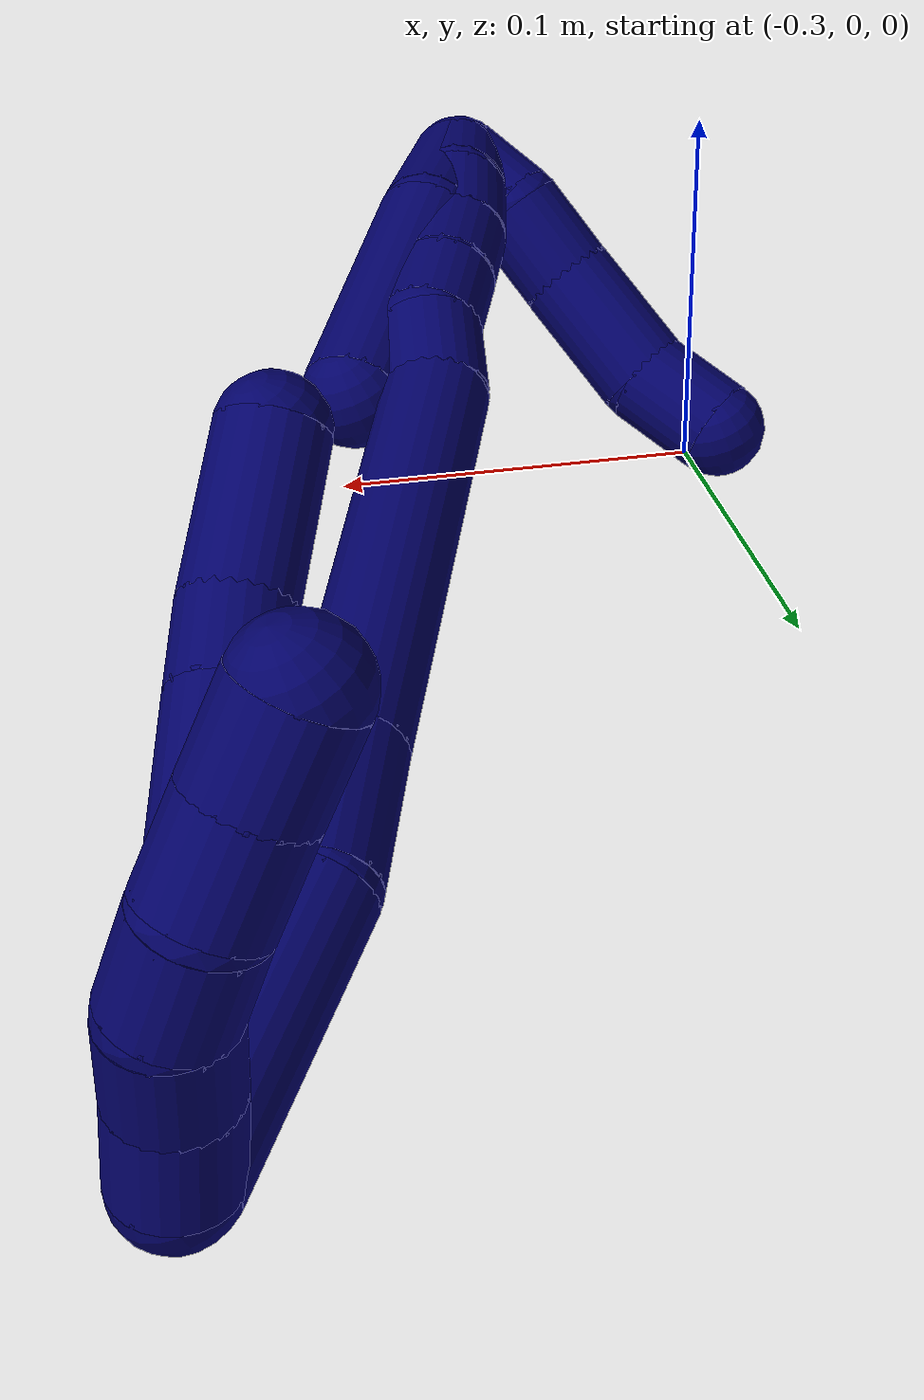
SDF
<sdf version="1.7">
 <world name="default">
  <model name="photoneo_s_sensor">
   <static>1</static>
   <pose>0 0 2 1.57079 1.57079 3.14159</pose>
   <link name="link">
    <inertial><mass>0.1</mass></inertial>
    <sensor name="sensor" type="depth">
     <update_rate>30</update_rate>
     <camera>
      <horizontal_fov>1.22</horizontal_fov>
      <image><width>1920</width><height>1200</height><format>B8G8R8</format></image>
      <clip><near>0.1</near><far>4</far></clip>
      <depth_camera><output>points</output></depth_camera>
     </camera>
     <plugin name="camera_plugin" filename="libgazebo_ros_depth_camera.so">
      <baseline>0.2</baseline>
      <alwaysOn>1</alwaysOn>
      <updateRate>0.0</updateRate>
      <cameraName>camera_ir</cameraName>
      <imageTopicName>/camera/color/image_raw</imageTopicName>
      <cameraInfoTopicName>/camera/color/camera_info</cameraInfoTopicName>
      <depthImageTopicName>/camera/depth/image_raw</depthImageTopicName>
      <depthImageCameraInfoTopicName>/camera/depth/camera_info</depthImageCameraInfoTopicName>
      <pointCloudTopicName>/camera/depth/points</pointCloudTopicName>
      <frameName>fr_optical</frameName>
      <pointCloudCutoff>0.1</pointCloudCutoff>
      <pointCloudCutoffMax>2.0</pointCloudCutoffMax>
      <distortionK1>0</distortionK1>
      <distortionK2>0</distortionK2>
      <distortionK3>0</distortionK3>
      <distortionT1>0</distortionT1>
      <distortionT2>0</distortionT2>
      <CxPrime>0</CxPrime>
      <Cx>0</Cx>
      <Cy>0</Cy>
      <focalLength>0</focalLength>
      <hackBaseline>0</hackBaseline>
     </plugin>
    </sensor>
   </link>
  </model>
  <model name="bin">
   <static>1</static>
   <link name="bottom">
    <collision name="collision-bottom">
     <pose>0 0 -0.01 0 -0 0</pose>
     <geometry><box><size>0.8 0.6 0.02</size></box></geometry>
     <surface>
      <friction><ode><mu>100</mu><mu2>100</mu2></ode></friction>
      <contact><collide_bitmask>65535</collide_bitmask></contact>
     </surface>
    </collision>
   </link>
   <link name="west_wall">
    <collision name="collision-west_wall">
     <pose>-0.41 0 0.1 0 -0 0</pose>
     <geometry><box><size>0.02 0.6 0.2</size></box></geometry>
     <surface>
      <friction><ode><mu>100</mu><mu2>100</mu2></ode></friction>
      <contact><collide_bitmask>65535</collide_bitmask></contact>
     </surface>
    </collision>
   </link>
   <link name="east_wall">
    <collision name="collision-east_wall">
     <pose>0.41 0 0.1 0 -0 0</pose>
     <geometry><box><size>0.02 0.6 0.2</size></box></geometry>
     <surface>
      <friction><ode><mu>100</mu><mu2>100</mu2></ode></friction>
      <contact><collide_bitmask>65535</collide_bitmask></contact>
     </surface>
    </collision>
   </link>
   <link name="south_wall">
    <collision name="collision-south_wall">
     <pose>0 -0.31 0.1 0 -0 0</pose>
     <geometry><box><size>0.8 0.02 0.2</size></box></geometry>
     <surface>
      <friction><ode><mu>100</mu><mu2>100</mu2></ode></friction>
      <contact><collide_bitmask>65535</collide_bitmask></contact>
     </surface>
    </collision>
   </link>
   <link name="north_wall">
    <collision name="collision-north_wall">
     <pose>0 0.31 0.1 0 -0 0</pose>
     <geometry><box><size>0.8 0.02 0.2</size></box></geometry>
     <surface>
      <friction><ode><mu>100</mu><mu2>100</mu2></ode></friction>
      <contact><collide_bitmask>65535</collide_bitmask></contact>
     </surface>
    </collision>
   </link>
  </model>
  <model name="7">
   <static>0</static>
   <link name="7">
    <collision name="collision-cylinder-e_1_2_8">
     <pose>-0.009635 -0.025491 0.009805 1.2036 -0.339145 -0.234103</pose>
     <geometry><cylinder><radius>0.0125</radius><length>0.057923</length></cylinder></geometry>
     <surface>
      <friction><ode><mu>1.16</mu><mu2>1.16</mu2><slip1>0</slip1><slip2>0</slip2></ode></friction>
      <contact><ode><kp>1e+06</kp><kd>1</kd><max_vel>0</max_vel><min_depth>0.001</min_depth></ode></contact>
     </surface>
    </collision>
    <visual name="visual-cylinder-e_1_2_8">
     <pose>-0.009635 -0.025491 0.009805 1.2036 -0.339145 -0.234103</pose>
     <geometry><cylinder><radius>0.0125</radius><length>0.057923</length></cylinder></geometry>
     <material><ambient>0.003922 0 0.403922 1</ambient></material>
    </visual>
    <collision name="collision-cylinder-e_2_8_9">
     <pose>-0.024838 -0.065752 0.025479 1.19252 -0.337005 -0.229883</pose>
     <geometry><cylinder><radius>0.0125</radius><length>0.033681</length></cylinder></geometry>
     <surface>
      <friction><ode><mu>1.16</mu><mu2>1.16</mu2><slip1>0</slip1><slip2>0</slip2></ode></friction>
      <contact><ode><kp>1e+06</kp><kd>1</kd><max_vel>0</max_vel><min_depth>0.001</min_depth></ode></contact>
     </surface>
    </collision>
    <visual name="visual-cylinder-e_2_8_9">
     <pose>-0.024838 -0.065752 0.025479 1.19252 -0.337005 -0.229883</pose>
     <geometry><cylinder><radius>0.0125</radius><length>0.033681</length></cylinder></geometry>
     <material><ambient>0.003922 0 0.403922 1</ambient></material>
    </visual>
    <collision name="collision-cylinder-e_3_9_10">
     <pose>-0.033931 -0.089296 0.035024 1.17422 -0.354724 -0.23741</pose>
     <geometry><cylinder><radius>0.0125</radius><length>0.020291</length></cylinder></geometry>
     <surface>
      <friction><ode><mu>1.16</mu><mu2>1.16</mu2><slip1>0</slip1><slip2>0</slip2></ode></friction>
      <contact><ode><kp>1e+06</kp><kd>1</kd><max_vel>0</max_vel><min_depth>0.001</min_depth></ode></contact>
     </surface>
    </collision>
    <visual name="visual-cylinder-e_3_9_10">
     <pose>-0.033931 -0.089296 0.035024 1.17422 -0.354724 -0.23741</pose>
     <geometry><cylinder><radius>0.0125</radius><length>0.020291</length></cylinder></geometry>
     <material><ambient>0.003922 0 0.403922 1</ambient></material>
    </visual>
    <collision name="collision-cylinder-e_4_10_6">
     <pose>-0.046546 -0.112322 0.04749 1.01805 -0.497417 -0.281591</pose>
     <geometry><cylinder><radius>0.0125</radius><length>0.038106</length></cylinder></geometry>
     <surface>
      <friction><ode><mu>1.16</mu><mu2>1.16</mu2><slip1>0</slip1><slip2>0</slip2></ode></friction>
      <contact><ode><kp>1e+06</kp><kd>1</kd><max_vel>0</max_vel><min_depth>0.001</min_depth></ode></contact>
     </surface>
    </collision>
    <visual name="visual-cylinder-e_4_10_6">
     <pose>-0.046546 -0.112322 0.04749 1.01805 -0.497417 -0.281591</pose>
     <geometry><cylinder><radius>0.0125</radius><length>0.038106</length></cylinder></geometry>
     <material><ambient>0.003922 0 0.403922 1</ambient></material>
    </visual>
    <collision name="collision-cylinder-e_1_2_11">
     <pose>-0.003958 -0.000235 0.00918 0.025637 -0.406953 -0.00529</pose>
     <geometry><cylinder><radius>0.0125</radius><length>0.02</length></cylinder></geometry>
     <surface>
      <friction><ode><mu>1.16</mu><mu2>1.16</mu2><slip1>0</slip1><slip2>0</slip2></ode></friction>
      <contact><ode><kp>1e+06</kp><kd>1</kd><max_vel>0</max_vel><min_depth>0.001</min_depth></ode></contact>
     </surface>
    </collision>
    <visual name="visual-cylinder-e_1_2_11">
     <pose>-0.003958 -0.000235 0.00918 0.025637 -0.406953 -0.00529</pose>
     <geometry><cylinder><radius>0.0125</radius><length>0.02</length></cylinder></geometry>
     <material><ambient>0.003922 0 0.403922 1</ambient></material>
    </visual>
    <collision name="collision-cylinder-e_2_11_12">
     <pose>-0.011439 0.000551 0.027664 -0.109392 -0.359995 0.019925</pose>
     <geometry><cylinder><radius>0.0125</radius><length>0.02</length></cylinder></geometry>
     <surface>
      <friction><ode><mu>1.16</mu><mu2>1.16</mu2><slip1>0</slip1><slip2>0</slip2></ode></friction>
      <contact><ode><kp>1e+06</kp><kd>1</kd><max_vel>0</max_vel><min_depth>0.001</min_depth></ode></contact>
     </surface>
    </collision>
    <visual name="visual-cylinder-e_2_11_12">
     <pose>-0.011439 0.000551 0.027664 -0.109392 -0.359995 0.019925</pose>
     <geometry><cylinder><radius>0.0125</radius><length>0.02</length></cylinder></geometry>
     <material><ambient>0.003922 0 0.403922 1</ambient></material>
    </visual>
    <collision name="collision-cylinder-e_3_12_13">
     <pose>-0.021279 0.001496 0.044718 0.009925 -0.683741 -0.003532</pose>
     <geometry><cylinder><radius>0.0125</radius><length>0.02</length></cylinder></geometry>
     <surface>
      <friction><ode><mu>1.16</mu><mu2>1.16</mu2><slip1>0</slip1><slip2>0</slip2></ode></friction>
      <contact><ode><kp>1e+06</kp><kd>1</kd><max_vel>0</max_vel><min_depth>0.001</min_depth></ode></contact>
     </surface>
    </collision>
    <visual name="visual-cylinder-e_3_12_13">
     <pose>-0.021279 0.001496 0.044718 0.009925 -0.683741 -0.003532</pose>
     <geometry><cylinder><radius>0.0125</radius><length>0.02</length></cylinder></geometry>
     <material><ambient>0.003922 0 0.403922 1</ambient></material>
    </visual>
    <collision name="collision-cylinder-e_4_13_14">
     <pose>-0.034655 -0.001054 0.059108 0.356612 -0.783696 -0.148665</pose>
     <geometry><cylinder><radius>0.0125</radius><length>0.02</length></cylinder></geometry>
     <surface>
      <friction><ode><mu>1.16</mu><mu2>1.16</mu2><slip1>0</slip1><slip2>0</slip2></ode></friction>
      <contact><ode><kp>1e+06</kp><kd>1</kd><max_vel>0</max_vel><min_depth>0.001</min_depth></ode></contact>
     </surface>
    </collision>
    <visual name="visual-cylinder-e_4_13_14">
     <pose>-0.034655 -0.001054 0.059108 0.356612 -0.783696 -0.148665</pose>
     <geometry><cylinder><radius>0.0125</radius><length>0.02</length></cylinder></geometry>
     <material><ambient>0.003922 0 0.403922 1</ambient></material>
    </visual>
    <collision name="collision-cylinder-e_5_14_5">
     <pose>-0.048844 -0.005556 0.072457 0.293576 -0.793758 -0.123776</pose>
     <geometry><cylinder><radius>0.0125</radius><length>0.02</length></cylinder></geometry>
     <surface>
      <friction><ode><mu>1.16</mu><mu2>1.16</mu2><slip1>0</slip1><slip2>0</slip2></ode></friction>
      <contact><ode><kp>1e+06</kp><kd>1</kd><max_vel>0</max_vel><min_depth>0.001</min_depth></ode></contact>
     </surface>
    </collision>
    <visual name="visual-cylinder-e_5_14_5">
     <pose>-0.048844 -0.005556 0.072457 0.293576 -0.793758 -0.123776</pose>
     <geometry><cylinder><radius>0.0125</radius><length>0.02</length></cylinder></geometry>
     <material><ambient>0.003922 0 0.403922 1</ambient></material>
    </visual>
    <collision name="collision-cylinder-e_1_2_15">
     <pose>-0.017702 -0.023759 0.003664 1.4178 -0.634714 -0.549153</pose>
     <geometry><cylinder><radius>0.0125</radius><length>0.059709</length></cylinder></geometry>
     <surface>
      <friction><ode><mu>1.16</mu><mu2>1.16</mu2><slip1>0</slip1><slip2>0</slip2></ode></friction>
      <contact><ode><kp>1e+06</kp><kd>1</kd><max_vel>0</max_vel><min_depth>0.001</min_depth></ode></contact>
     </surface>
    </collision>
    <visual name="visual-cylinder-e_1_2_15">
     <pose>-0.017702 -0.023759 0.003664 1.4178 -0.634714 -0.549153</pose>
     <geometry><cylinder><radius>0.0125</radius><length>0.059709</length></cylinder></geometry>
     <material><ambient>0.003922 0 0.403922 1</ambient></material>
    </visual>
    <collision name="collision-cylinder-e_2_15_16">
     <pose>-0.041246 -0.062761 0.009061 1.45755 -0.363833 -0.325524</pose>
     <geometry><cylinder><radius>0.0125</radius><length>0.032831</length></cylinder></geometry>
     <surface>
      <friction><ode><mu>1.16</mu><mu2>1.16</mu2><slip1>0</slip1><slip2>0</slip2></ode></friction>
      <contact><ode><kp>1e+06</kp><kd>1</kd><max_vel>0</max_vel><min_depth>0.001</min_depth></ode></contact>
     </surface>
    </collision>
    <visual name="visual-cylinder-e_2_15_16">
     <pose>-0.041246 -0.062761 0.009061 1.45755 -0.363833 -0.325524</pose>
     <geometry><cylinder><radius>0.0125</radius><length>0.032831</length></cylinder></geometry>
     <material><ambient>0.003922 0 0.403922 1</ambient></material>
    </visual>
    <collision name="collision-cylinder-e_3_16_17">
     <pose>-0.067202 -0.127492 0.015693 1.47214 -0.384349 -0.348951</pose>
     <geometry><cylinder><radius>0.0125</radius><length>0.107289</length></cylinder></geometry>
     <surface>
      <friction><ode><mu>1.16</mu><mu2>1.16</mu2><slip1>0</slip1><slip2>0</slip2></ode></friction>
      <contact><ode><kp>1e+06</kp><kd>1</kd><max_vel>0</max_vel><min_depth>0.001</min_depth></ode></contact>
     </surface>
    </collision>
    <visual name="visual-cylinder-e_3_16_17">
     <pose>-0.067202 -0.127492 0.015693 1.47214 -0.384349 -0.348951</pose>
     <geometry><cylinder><radius>0.0125</radius><length>0.107289</length></cylinder></geometry>
     <material><ambient>0.003922 0 0.403922 1</ambient></material>
    </visual>
    <collision name="collision-cylinder-e_4_17_18">
     <pose>-0.089395 -0.186164 0.024045 1.21106 -0.208802 -0.144824</pose>
     <geometry><cylinder><radius>0.0125</radius><length>0.020058</length></cylinder></geometry>
     <surface>
      <friction><ode><mu>1.16</mu><mu2>1.16</mu2><slip1>0</slip1><slip2>0</slip2></ode></friction>
      <contact><ode><kp>1e+06</kp><kd>1</kd><max_vel>0</max_vel><min_depth>0.001</min_depth></ode></contact>
     </surface>
    </collision>
    <visual name="visual-cylinder-e_4_17_18">
     <pose>-0.089395 -0.186164 0.024045 1.21106 -0.208802 -0.144824</pose>
     <geometry><cylinder><radius>0.0125</radius><length>0.020058</length></cylinder></geometry>
     <material><ambient>0.003922 0 0.403922 1</ambient></material>
    </visual>
    <collision name="collision-cylinder-e_5_18_19">
     <pose>-0.095392 -0.204535 0.028183 1.49646 -0.402122 -0.373979</pose>
     <geometry><cylinder><radius>0.0125</radius><length>0.020022</length></cylinder></geometry>
     <surface>
      <friction><ode><mu>1.16</mu><mu2>1.16</mu2><slip1>0</slip1><slip2>0</slip2></ode></friction>
      <contact><ode><kp>1e+06</kp><kd>1</kd><max_vel>0</max_vel><min_depth>0.001</min_depth></ode></contact>
     </surface>
    </collision>
    <visual name="visual-cylinder-e_5_18_19">
     <pose>-0.095392 -0.204535 0.028183 1.49646 -0.402122 -0.373979</pose>
     <geometry><cylinder><radius>0.0125</radius><length>0.020022</length></cylinder></geometry>
     <material><ambient>0.003922 0 0.403922 1</ambient></material>
    </visual>
    <collision name="collision-cylinder-e_6_19_20">
     <pose>-0.102701 -0.223168 0.028903 1.56709 -0.344615 -0.343367</pose>
     <geometry><cylinder><radius>0.0125</radius><length>0.020074</length></cylinder></geometry>
     <surface>
      <friction><ode><mu>1.16</mu><mu2>1.16</mu2><slip1>0</slip1><slip2>0</slip2></ode></friction>
      <contact><ode><kp>1e+06</kp><kd>1</kd><max_vel>0</max_vel><min_depth>0.001</min_depth></ode></contact>
     </surface>
    </collision>
    <visual name="visual-cylinder-e_6_19_20">
     <pose>-0.102701 -0.223168 0.028903 1.56709 -0.344615 -0.343367</pose>
     <geometry><cylinder><radius>0.0125</radius><length>0.020074</length></cylinder></geometry>
     <material><ambient>0.003922 0 0.403922 1</ambient></material>
    </visual>
    <collision name="collision-cylinder-e_7_20_21">
     <pose>-0.10851 -0.242236 0.030218 1.43846 -0.244255 -0.214144</pose>
     <geometry><cylinder><radius>0.0125</radius><length>0.020006</length></cylinder></geometry>
     <surface>
      <friction><ode><mu>1.16</mu><mu2>1.16</mu2><slip1>0</slip1><slip2>0</slip2></ode></friction>
      <contact><ode><kp>1e+06</kp><kd>1</kd><max_vel>0</max_vel><min_depth>0.001</min_depth></ode></contact>
     </surface>
    </collision>
    <visual name="visual-cylinder-e_7_20_21">
     <pose>-0.10851 -0.242236 0.030218 1.43846 -0.244255 -0.214144</pose>
     <geometry><cylinder><radius>0.0125</radius><length>0.020006</length></cylinder></geometry>
     <material><ambient>0.003922 0 0.403922 1</ambient></material>
    </visual>
    <collision name="collision-cylinder-e_8_21_1">
     <pose>-0.112723 -0.261657 0.030572 1.66511 -0.180276 -0.198023</pose>
     <geometry><cylinder><radius>0.0125</radius><length>0.020012</length></cylinder></geometry>
     <surface>
      <friction><ode><mu>1.16</mu><mu2>1.16</mu2><slip1>0</slip1><slip2>0</slip2></ode></friction>
      <contact><ode><kp>1e+06</kp><kd>1</kd><max_vel>0</max_vel><min_depth>0.001</min_depth></ode></contact>
     </surface>
    </collision>
    <visual name="visual-cylinder-e_8_21_1">
     <pose>-0.112723 -0.261657 0.030572 1.66511 -0.180276 -0.198023</pose>
     <geometry><cylinder><radius>0.0125</radius><length>0.020012</length></cylinder></geometry>
     <material><ambient>0.003922 0 0.403922 1</ambient></material>
    </visual>
    <collision name="collision-cylinder-e_1_1_22">
     <pose>-0.107826 -0.254273 0.031866 -1.44225 0.368562 -0.324819</pose>
     <geometry><cylinder><radius>0.0125</radius><length>0.037149</length></cylinder></geometry>
     <surface>
      <friction><ode><mu>1.16</mu><mu2>1.16</mu2><slip1>0</slip1><slip2>0</slip2></ode></friction>
      <contact><ode><kp>1e+06</kp><kd>1</kd><max_vel>0</max_vel><min_depth>0.001</min_depth></ode></contact>
     </surface>
    </collision>
    <visual name="visual-cylinder-e_1_1_22">
     <pose>-0.107826 -0.254273 0.031866 -1.44225 0.368562 -0.324819</pose>
     <geometry><cylinder><radius>0.0125</radius><length>0.037149</length></cylinder></geometry>
     <material><ambient>0.003922 0 0.403922 1</ambient></material>
    </visual>
    <collision name="collision-cylinder-e_2_22_4">
     <pose>-0.08537 -0.210252 0.029748 -1.73111 0.525475 -0.612031</pose>
     <geometry><cylinder><radius>0.0125</radius><length>0.062851</length></cylinder></geometry>
     <surface>
      <friction><ode><mu>1.16</mu><mu2>1.16</mu2><slip1>0</slip1><slip2>0</slip2></ode></friction>
      <contact><ode><kp>1e+06</kp><kd>1</kd><max_vel>0</max_vel><min_depth>0.001</min_depth></ode></contact>
     </surface>
    </collision>
    <visual name="visual-cylinder-e_2_22_4">
     <pose>-0.08537 -0.210252 0.029748 -1.73111 0.525475 -0.612031</pose>
     <geometry><cylinder><radius>0.0125</radius><length>0.062851</length></cylinder></geometry>
     <material><ambient>0.003922 0 0.403922 1</ambient></material>
    </visual>
    <collision name="collision-cylinder-e_1_1_23">
     <pose>-0.119062 -0.264502 0.023578 -2.2881 -0.457544 0.946571</pose>
     <geometry><cylinder><radius>0.0125</radius><length>0.020575</length></cylinder></geometry>
     <surface>
      <friction><ode><mu>1.16</mu><mu2>1.16</mu2><slip1>0</slip1><slip2>0</slip2></ode></friction>
      <contact><ode><kp>1e+06</kp><kd>1</kd><max_vel>0</max_vel><min_depth>0.001</min_depth></ode></contact>
     </surface>
    </collision>
    <visual name="visual-cylinder-e_1_1_23">
     <pose>-0.119062 -0.264502 0.023578 -2.2881 -0.457544 0.946571</pose>
     <geometry><cylinder><radius>0.0125</radius><length>0.020575</length></cylinder></geometry>
     <material><ambient>0.003922 0 0.403922 1</ambient></material>
    </visual>
    <collision name="collision-cylinder-e_2_23_24">
     <pose>-0.126478 -0.251719 0.00831 -2.57694 -0.257781 0.840399</pose>
     <geometry><cylinder><radius>0.0125</radius><length>0.022528</length></cylinder></geometry>
     <surface>
      <friction><ode><mu>1.16</mu><mu2>1.16</mu2><slip1>0</slip1><slip2>0</slip2></ode></friction>
      <contact><ode><kp>1e+06</kp><kd>1</kd><max_vel>0</max_vel><min_depth>0.001</min_depth></ode></contact>
     </surface>
    </collision>
    <visual name="visual-cylinder-e_2_23_24">
     <pose>-0.126478 -0.251719 0.00831 -2.57694 -0.257781 0.840399</pose>
     <geometry><cylinder><radius>0.0125</radius><length>0.022528</length></cylinder></geometry>
     <material><ambient>0.003922 0 0.403922 1</ambient></material>
    </visual>
    <collision name="collision-cylinder-e_3_24_25">
     <pose>-0.133763 -0.235045 -0.012953 -2.40925 -0.265656 0.670568</pose>
     <geometry><cylinder><radius>0.0125</radius><length>0.03362</length></cylinder></geometry>
     <surface>
      <friction><ode><mu>1.16</mu><mu2>1.16</mu2><slip1>0</slip1><slip2>0</slip2></ode></friction>
      <contact><ode><kp>1e+06</kp><kd>1</kd><max_vel>0</max_vel><min_depth>0.001</min_depth></ode></contact>
     </surface>
    </collision>
    <visual name="visual-cylinder-e_3_24_25">
     <pose>-0.133763 -0.235045 -0.012953 -2.40925 -0.265656 0.670568</pose>
     <geometry><cylinder><radius>0.0125</radius><length>0.03362</length></cylinder></geometry>
     <material><ambient>0.003922 0 0.403922 1</ambient></material>
    </visual>
    <collision name="collision-cylinder-e_4_25_3">
     <pose>-0.143912 -0.21637 -0.031436 -2.25767 -0.515322 1.01627</pose>
     <geometry><cylinder><radius>0.0125</radius><length>0.023277</length></cylinder></geometry>
     <surface>
      <friction><ode><mu>1.16</mu><mu2>1.16</mu2><slip1>0</slip1><slip2>0</slip2></ode></friction>
      <contact><ode><kp>1e+06</kp><kd>1</kd><max_vel>0</max_vel><min_depth>0.001</min_depth></ode></contact>
     </surface>
    </collision>
    <visual name="visual-cylinder-e_4_25_3">
     <pose>-0.143912 -0.21637 -0.031436 -2.25767 -0.515322 1.01627</pose>
     <geometry><cylinder><radius>0.0125</radius><length>0.023277</length></cylinder></geometry>
     <material><ambient>0.003922 0 0.403922 1</ambient></material>
    </visual>
    <collision name="collision-sphere-3">
     <pose>-0.149648 -0.208539 -0.037858 0 -0 0</pose>
     <geometry><sphere><radius>0.0125</radius></sphere></geometry>
     <surface>
      <friction><ode><mu>1.16</mu><mu2>1.16</mu2><slip1>0</slip1><slip2>0</slip2></ode></friction>
      <contact><ode><kp>1e+06</kp><kd>1</kd><max_vel>0</max_vel><min_depth>0.001</min_depth></ode></contact>
     </surface>
    </collision>
    <visual name="visual-sphere-3">
     <pose>-0.149648 -0.208539 -0.037858 0 -0 0</pose>
     <geometry><sphere><radius>0.0125</radius></sphere></geometry>
     <material><ambient>0.003922 0 0.403922 1</ambient></material>
    </visual>
    <collision name="collision-sphere-25">
     <pose>-0.138176 -0.2242 -0.025014 0 -0 0</pose>
     <geometry><sphere><radius>0.0125</radius></sphere></geometry>
     <surface>
      <friction><ode><mu>1.16</mu><mu2>1.16</mu2><slip1>0</slip1><slip2>0</slip2></ode></friction>
      <contact><ode><kp>1e+06</kp><kd>1</kd><max_vel>0</max_vel><min_depth>0.001</min_depth></ode></contact>
     </surface>
    </collision>
    <visual name="visual-sphere-25">
     <pose>-0.138176 -0.2242 -0.025014 0 -0 0</pose>
     <geometry><sphere><radius>0.0125</radius></sphere></geometry>
     <material><ambient>0.003922 0 0.403922 1</ambient></material>
    </visual>
    <collision name="collision-sphere-24">
     <pose>-0.129349 -0.245891 -0.000891 0 -0 0</pose>
     <geometry><sphere><radius>0.0125</radius></sphere></geometry>
     <surface>
      <friction><ode><mu>1.16</mu><mu2>1.16</mu2><slip1>0</slip1><slip2>0</slip2></ode></friction>
      <contact><ode><kp>1e+06</kp><kd>1</kd><max_vel>0</max_vel><min_depth>0.001</min_depth></ode></contact>
     </surface>
    </collision>
    <visual name="visual-sphere-24">
     <pose>-0.129349 -0.245891 -0.000891 0 -0 0</pose>
     <geometry><sphere><radius>0.0125</radius></sphere></geometry>
     <material><ambient>0.003922 0 0.403922 1</ambient></material>
    </visual>
    <collision name="collision-sphere-23">
     <pose>-0.123606 -0.257547 0.017511 0 -0 0</pose>
     <geometry><sphere><radius>0.0125</radius></sphere></geometry>
     <surface>
      <friction><ode><mu>1.16</mu><mu2>1.16</mu2><slip1>0</slip1><slip2>0</slip2></ode></friction>
      <contact><ode><kp>1e+06</kp><kd>1</kd><max_vel>0</max_vel><min_depth>0.001</min_depth></ode></contact>
     </surface>
    </collision>
    <visual name="visual-sphere-23">
     <pose>-0.123606 -0.257547 0.017511 0 -0 0</pose>
     <geometry><sphere><radius>0.0125</radius></sphere></geometry>
     <material><ambient>0.003922 0 0.403922 1</ambient></material>
    </visual>
    <collision name="collision-sphere-4">
     <pose>-0.069606 -0.183415 0.025408 0 -0 0</pose>
     <geometry><sphere><radius>0.0125</radius></sphere></geometry>
     <surface>
      <friction><ode><mu>1.16</mu><mu2>1.16</mu2><slip1>0</slip1><slip2>0</slip2></ode></friction>
      <contact><ode><kp>1e+06</kp><kd>1</kd><max_vel>0</max_vel><min_depth>0.001</min_depth></ode></contact>
     </surface>
    </collision>
    <visual name="visual-sphere-4">
     <pose>-0.069606 -0.183415 0.025408 0 -0 0</pose>
     <geometry><sphere><radius>0.0125</radius></sphere></geometry>
     <material><ambient>0.003922 0 0.403922 1</ambient></material>
    </visual>
    <collision name="collision-sphere-22">
     <pose>-0.101134 -0.237089 0.034087 0 -0 0</pose>
     <geometry><sphere><radius>0.0125</radius></sphere></geometry>
     <surface>
      <friction><ode><mu>1.16</mu><mu2>1.16</mu2><slip1>0</slip1><slip2>0</slip2></ode></friction>
      <contact><ode><kp>1e+06</kp><kd>1</kd><max_vel>0</max_vel><min_depth>0.001</min_depth></ode></contact>
     </surface>
    </collision>
    <visual name="visual-sphere-22">
     <pose>-0.101134 -0.237089 0.034087 0 -0 0</pose>
     <geometry><sphere><radius>0.0125</radius></sphere></geometry>
     <material><ambient>0.003922 0 0.403922 1</ambient></material>
    </visual>
    <collision name="collision-sphere-1">
     <pose>-0.114518 -0.271457 0.029645 0 -0 0</pose>
     <geometry><sphere><radius>0.0125</radius></sphere></geometry>
     <surface>
      <friction><ode><mu>1.16</mu><mu2>1.16</mu2><slip1>0</slip1><slip2>0</slip2></ode></friction>
      <contact><ode><kp>1e+06</kp><kd>1</kd><max_vel>0</max_vel><min_depth>0.001</min_depth></ode></contact>
     </surface>
    </collision>
    <visual name="visual-sphere-1">
     <pose>-0.114518 -0.271457 0.029645 0 -0 0</pose>
     <geometry><sphere><radius>0.0125</radius></sphere></geometry>
     <material><ambient>0.003922 0 0.403922 1</ambient></material>
    </visual>
    <collision name="collision-sphere-21">
     <pose>-0.110929 -0.251857 0.031499 0 -0 0</pose>
     <geometry><sphere><radius>0.0125</radius></sphere></geometry>
     <surface>
      <friction><ode><mu>1.16</mu><mu2>1.16</mu2><slip1>0</slip1><slip2>0</slip2></ode></friction>
      <contact><ode><kp>1e+06</kp><kd>1</kd><max_vel>0</max_vel><min_depth>0.001</min_depth></ode></contact>
     </surface>
    </collision>
    <visual name="visual-sphere-21">
     <pose>-0.110929 -0.251857 0.031499 0 -0 0</pose>
     <geometry><sphere><radius>0.0125</radius></sphere></geometry>
     <material><ambient>0.003922 0 0.403922 1</ambient></material>
    </visual>
    <collision name="collision-sphere-11">
     <pose>-0.007916 -0.000471 0.018361 0 -0 0</pose>
     <geometry><sphere><radius>0.0125</radius></sphere></geometry>
     <surface>
      <friction><ode><mu>1.16</mu><mu2>1.16</mu2><slip1>0</slip1><slip2>0</slip2></ode></friction>
      <contact><ode><kp>1e+06</kp><kd>1</kd><max_vel>0</max_vel><min_depth>0.001</min_depth></ode></contact>
     </surface>
    </collision>
    <visual name="visual-sphere-11">
     <pose>-0.007916 -0.000471 0.018361 0 -0 0</pose>
     <geometry><sphere><radius>0.0125</radius></sphere></geometry>
     <material><ambient>0.003922 0 0.403922 1</ambient></material>
    </visual>
    <collision name="collision-sphere-6">
     <pose>-0.055637 -0.126573 0.056281 0 -0 0</pose>
     <geometry><sphere><radius>0.0125</radius></sphere></geometry>
     <surface>
      <friction><ode><mu>1.16</mu><mu2>1.16</mu2><slip1>0</slip1><slip2>0</slip2></ode></friction>
      <contact><ode><kp>1e+06</kp><kd>1</kd><max_vel>0</max_vel><min_depth>0.001</min_depth></ode></contact>
     </surface>
    </collision>
    <visual name="visual-sphere-6">
     <pose>-0.055637 -0.126573 0.056281 0 -0 0</pose>
     <geometry><sphere><radius>0.0125</radius></sphere></geometry>
     <material><ambient>0.003922 0 0.403922 1</ambient></material>
    </visual>
    <collision name="collision-sphere-10">
     <pose>-0.037454 -0.098072 0.038699 0 -0 0</pose>
     <geometry><sphere><radius>0.0125</radius></sphere></geometry>
     <surface>
      <friction><ode><mu>1.16</mu><mu2>1.16</mu2><slip1>0</slip1><slip2>0</slip2></ode></friction>
      <contact><ode><kp>1e+06</kp><kd>1</kd><max_vel>0</max_vel><min_depth>0.001</min_depth></ode></contact>
     </surface>
    </collision>
    <visual name="visual-sphere-10">
     <pose>-0.037454 -0.098072 0.038699 0 -0 0</pose>
     <geometry><sphere><radius>0.0125</radius></sphere></geometry>
     <material><ambient>0.003922 0 0.403922 1</ambient></material>
    </visual>
    <collision name="collision-sphere-9">
     <pose>-0.030407 -0.080521 0.031349 0 -0 0</pose>
     <geometry><sphere><radius>0.0125</radius></sphere></geometry>
     <surface>
      <friction><ode><mu>1.16</mu><mu2>1.16</mu2><slip1>0</slip1><slip2>0</slip2></ode></friction>
      <contact><ode><kp>1e+06</kp><kd>1</kd><max_vel>0</max_vel><min_depth>0.001</min_depth></ode></contact>
     </surface>
    </collision>
    <visual name="visual-sphere-9">
     <pose>-0.030407 -0.080521 0.031349 0 -0 0</pose>
     <geometry><sphere><radius>0.0125</radius></sphere></geometry>
     <material><ambient>0.003922 0 0.403922 1</ambient></material>
    </visual>
    <collision name="collision-sphere-2">
     <geometry><sphere><radius>0.0125</radius></sphere></geometry>
     <surface>
      <friction><ode><mu>1.16</mu><mu2>1.16</mu2><slip1>0</slip1><slip2>0</slip2></ode></friction>
      <contact><ode><kp>1e+06</kp><kd>1</kd><max_vel>0</max_vel><min_depth>0.001</min_depth></ode></contact>
     </surface>
    </collision>
    <visual name="visual-sphere-2">
     <geometry><sphere><radius>0.0125</radius></sphere></geometry>
     <material><ambient>0.003922 0 0.403922 1</ambient></material>
    </visual>
    <collision name="collision-sphere-19">
     <pose>-0.09931 -0.213722 0.028868 0 -0 0</pose>
     <geometry><sphere><radius>0.0125</radius></sphere></geometry>
     <surface>
      <friction><ode><mu>1.16</mu><mu2>1.16</mu2><slip1>0</slip1><slip2>0</slip2></ode></friction>
      <contact><ode><kp>1e+06</kp><kd>1</kd><max_vel>0</max_vel><min_depth>0.001</min_depth></ode></contact>
     </surface>
    </collision>
    <visual name="visual-sphere-19">
     <pose>-0.09931 -0.213722 0.028868 0 -0 0</pose>
     <geometry><sphere><radius>0.0125</radius></sphere></geometry>
     <material><ambient>0.003922 0 0.403922 1</ambient></material>
    </visual>
    <collision name="collision-sphere-8">
     <pose>-0.01927 -0.050982 0.01961 0 -0 0</pose>
     <geometry><sphere><radius>0.0125</radius></sphere></geometry>
     <surface>
      <friction><ode><mu>1.16</mu><mu2>1.16</mu2><slip1>0</slip1><slip2>0</slip2></ode></friction>
      <contact><ode><kp>1e+06</kp><kd>1</kd><max_vel>0</max_vel><min_depth>0.001</min_depth></ode></contact>
     </surface>
    </collision>
    <visual name="visual-sphere-8">
     <pose>-0.01927 -0.050982 0.01961 0 -0 0</pose>
     <geometry><sphere><radius>0.0125</radius></sphere></geometry>
     <material><ambient>0.003922 0 0.403922 1</ambient></material>
    </visual>
    <collision name="collision-sphere-12">
     <pose>-0.014962 0.001573 0.036967 0 -0 0</pose>
     <geometry><sphere><radius>0.0125</radius></sphere></geometry>
     <surface>
      <friction><ode><mu>1.16</mu><mu2>1.16</mu2><slip1>0</slip1><slip2>0</slip2></ode></friction>
      <contact><ode><kp>1e+06</kp><kd>1</kd><max_vel>0</max_vel><min_depth>0.001</min_depth></ode></contact>
     </surface>
    </collision>
    <visual name="visual-sphere-12">
     <pose>-0.014962 0.001573 0.036967 0 -0 0</pose>
     <geometry><sphere><radius>0.0125</radius></sphere></geometry>
     <material><ambient>0.003922 0 0.403922 1</ambient></material>
    </visual>
    <collision name="collision-sphere-13">
     <pose>-0.027596 0.001419 0.05247 0 -0 0</pose>
     <geometry><sphere><radius>0.0125</radius></sphere></geometry>
     <surface>
      <friction><ode><mu>1.16</mu><mu2>1.16</mu2><slip1>0</slip1><slip2>0</slip2></ode></friction>
      <contact><ode><kp>1e+06</kp><kd>1</kd><max_vel>0</max_vel><min_depth>0.001</min_depth></ode></contact>
     </surface>
    </collision>
    <visual name="visual-sphere-13">
     <pose>-0.027596 0.001419 0.05247 0 -0 0</pose>
     <geometry><sphere><radius>0.0125</radius></sphere></geometry>
     <material><ambient>0.003922 0 0.403922 1</ambient></material>
    </visual>
    <collision name="collision-sphere-14">
     <pose>-0.041714 -0.003527 0.065745 0 -0 0</pose>
     <geometry><sphere><radius>0.0125</radius></sphere></geometry>
     <surface>
      <friction><ode><mu>1.16</mu><mu2>1.16</mu2><slip1>0</slip1><slip2>0</slip2></ode></friction>
      <contact><ode><kp>1e+06</kp><kd>1</kd><max_vel>0</max_vel><min_depth>0.001</min_depth></ode></contact>
     </surface>
    </collision>
    <visual name="visual-sphere-14">
     <pose>-0.041714 -0.003527 0.065745 0 -0 0</pose>
     <geometry><sphere><radius>0.0125</radius></sphere></geometry>
     <material><ambient>0.003922 0 0.403922 1</ambient></material>
    </visual>
    <collision name="collision-sphere-5">
     <pose>-0.055974 -0.007585 0.079169 0 -0 0</pose>
     <geometry><sphere><radius>0.0125</radius></sphere></geometry>
     <surface>
      <friction><ode><mu>1.16</mu><mu2>1.16</mu2><slip1>0</slip1><slip2>0</slip2></ode></friction>
      <contact><ode><kp>1e+06</kp><kd>1</kd><max_vel>0</max_vel><min_depth>0.001</min_depth></ode></contact>
     </surface>
    </collision>
    <visual name="visual-sphere-5">
     <pose>-0.055974 -0.007585 0.079169 0 -0 0</pose>
     <geometry><sphere><radius>0.0125</radius></sphere></geometry>
     <material><ambient>0.003922 0 0.403922 1</ambient></material>
    </visual>
    <collision name="collision-sphere-15">
     <pose>-0.035404 -0.047518 0.007328 0 -0 0</pose>
     <geometry><sphere><radius>0.0125</radius></sphere></geometry>
     <surface>
      <friction><ode><mu>1.16</mu><mu2>1.16</mu2><slip1>0</slip1><slip2>0</slip2></ode></friction>
      <contact><ode><kp>1e+06</kp><kd>1</kd><max_vel>0</max_vel><min_depth>0.001</min_depth></ode></contact>
     </surface>
    </collision>
    <visual name="visual-sphere-15">
     <pose>-0.035404 -0.047518 0.007328 0 -0 0</pose>
     <geometry><sphere><radius>0.0125</radius></sphere></geometry>
     <material><ambient>0.003922 0 0.403922 1</ambient></material>
    </visual>
    <collision name="collision-sphere-16">
     <pose>-0.047087 -0.078004 0.010795 0 -0 0</pose>
     <geometry><sphere><radius>0.0125</radius></sphere></geometry>
     <surface>
      <friction><ode><mu>1.16</mu><mu2>1.16</mu2><slip1>0</slip1><slip2>0</slip2></ode></friction>
      <contact><ode><kp>1e+06</kp><kd>1</kd><max_vel>0</max_vel><min_depth>0.001</min_depth></ode></contact>
     </surface>
    </collision>
    <visual name="visual-sphere-16">
     <pose>-0.047087 -0.078004 0.010795 0 -0 0</pose>
     <geometry><sphere><radius>0.0125</radius></sphere></geometry>
     <material><ambient>0.003922 0 0.403922 1</ambient></material>
    </visual>
    <collision name="collision-sphere-17">
     <pose>-0.087316 -0.176981 0.020591 0 -0 0</pose>
     <geometry><sphere><radius>0.0125</radius></sphere></geometry>
     <surface>
      <friction><ode><mu>1.16</mu><mu2>1.16</mu2><slip1>0</slip1><slip2>0</slip2></ode></friction>
      <contact><ode><kp>1e+06</kp><kd>1</kd><max_vel>0</max_vel><min_depth>0.001</min_depth></ode></contact>
     </surface>
    </collision>
    <visual name="visual-sphere-17">
     <pose>-0.087316 -0.176981 0.020591 0 -0 0</pose>
     <geometry><sphere><radius>0.0125</radius></sphere></geometry>
     <material><ambient>0.003922 0 0.403922 1</ambient></material>
    </visual>
    <collision name="collision-sphere-18">
     <pose>-0.091474 -0.195348 0.027499 0 -0 0</pose>
     <geometry><sphere><radius>0.0125</radius></sphere></geometry>
     <surface>
      <friction><ode><mu>1.16</mu><mu2>1.16</mu2><slip1>0</slip1><slip2>0</slip2></ode></friction>
      <contact><ode><kp>1e+06</kp><kd>1</kd><max_vel>0</max_vel><min_depth>0.001</min_depth></ode></contact>
     </surface>
    </collision>
    <visual name="visual-sphere-18">
     <pose>-0.091474 -0.195348 0.027499 0 -0 0</pose>
     <geometry><sphere><radius>0.0125</radius></sphere></geometry>
     <material><ambient>0.003922 0 0.403922 1</ambient></material>
    </visual>
    <collision name="collision-sphere-20">
     <pose>-0.106091 -0.232615 0.028937 0 -0 0</pose>
     <geometry><sphere><radius>0.0125</radius></sphere></geometry>
     <surface>
      <friction><ode><mu>1.16</mu><mu2>1.16</mu2><slip1>0</slip1><slip2>0</slip2></ode></friction>
      <contact><ode><kp>1e+06</kp><kd>1</kd><max_vel>0</max_vel><min_depth>0.001</min_depth></ode></contact>
     </surface>
    </collision>
    <visual name="visual-sphere-20">
     <pose>-0.106091 -0.232615 0.028937 0 -0 0</pose>
     <geometry><sphere><radius>0.0125</radius></sphere></geometry>
     <material><ambient>0.003922 0 0.403922 1</ambient></material>
    </visual>
    <inertial>
     <pose>-0.064786 -0.128187 0.021081 0 -0 0</pose>
     <mass>0.75</mass>
     <inertia>
      <ixx>0.000103</ixx>
      <ixy>0</ixy>
      <ixz>0</ixz>
      <iyy>-2.2e-05</iyy>
      <iyz>0</iyz>
      <izz>0.000188</izz>
     </inertia>
    </inertial>
   </link>
   <pose>-0.131364 0.262991 0.011498 -0.053019 0.349377 -0.039476</pose>
  </model>
 </world>
</sdf>
